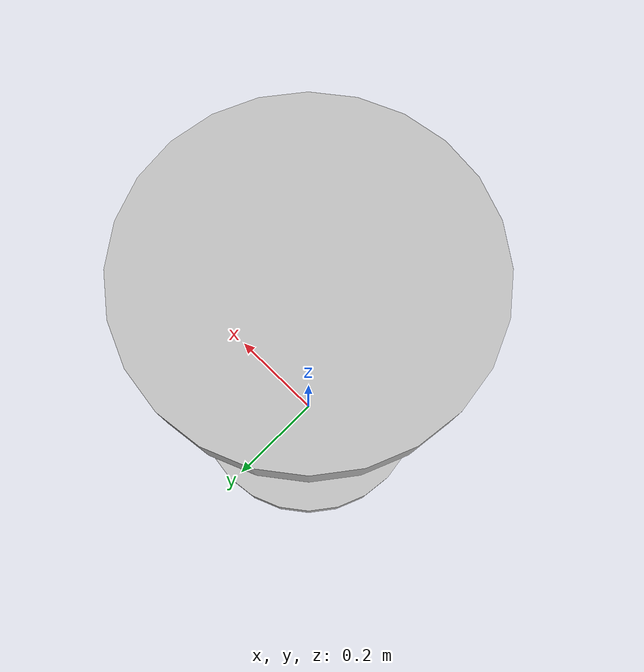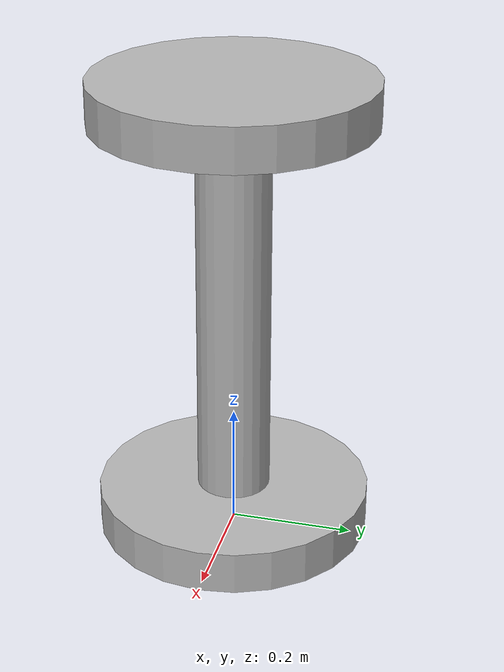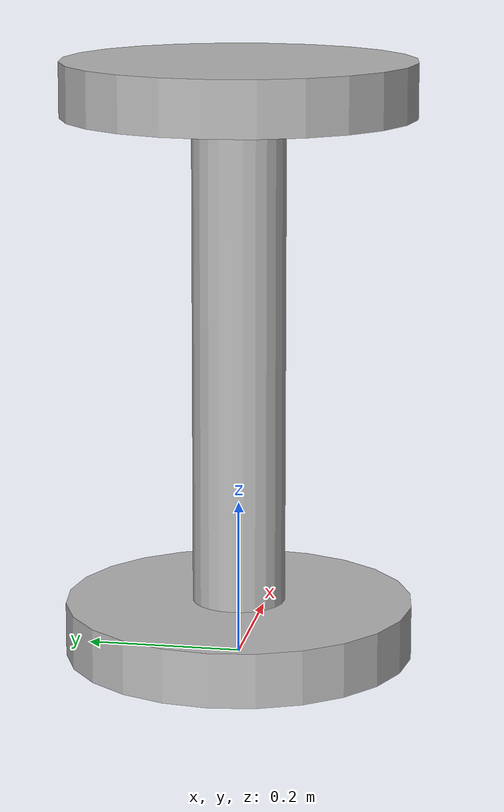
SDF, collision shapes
<?xml version="1.0" ?>
<sdf version="1.4">
  <model name="robot_3dw">
    <static>false</static>
    <link name="body">
      <pose>0 0 0.001 0 0 0</pose>
      <gravity>true</gravity>
      <inertial>
        <mass>30</mass>
        <pose>0 0 0.075 0 0 0</pose>
        <inertia>
	  <!-- according to http://en.wikipedia.org/wiki/List_of_moments_of_inertia for a solid cylinder of radius r=0.225, height h=0.15, mass m=30 -->
          <ixx>0.4359375</ixx>
          <ixy>0.0</ixy>
          <ixz>0.0</ixz>
          <iyy>0.4359375</iyy>
          <iyz>0.0</iyz>
          <izz>0.759375</izz>
        </inertia>
      </inertial>

      <visual name="body-visual">
        <pose>0.01 0 0.00 0 0 3.14159</pose>
        <geometry>
          <mesh>
            <uri>model://robotino3/meshes/robotino3.dae</uri>
            <scale>0.001 0.001 0.001</scale>
          </mesh>
        </geometry>
        <cast_shadows>false</cast_shadows>
      </visual>

      <collision name="body1-collision">
        <pose>0 0 0.735 0 0 0</pose>
        <geometry>
          <cylinder>
            <length>0.07</length>
            <radius>0.225</radius>
          </cylinder>
        </geometry>
        <surface>
          <friction>
            <ode>
              <mu>0.2</mu>
              <mu2>0.2</mu2>
              <slip1>0.8</slip1>
              <slip2>0.8</slip2>
            </ode>
          </friction>
          <contact>
            <ode>
              <min_depth>0.05</min_depth>
            </ode>
          </contact>
        </surface>
      </collision>

      <collision name="body2-collision">
        <pose>0 0 0.35 0 0 0</pose>
        <geometry>
          <cylinder>
            <length>0.68</length>
            <radius>0.06</radius>
          </cylinder>
        </geometry>
        <surface>
          <friction>
            <ode>
              <mu>0.2</mu>
              <mu2>0.2</mu2>
              <slip1>0.8</slip1>
              <slip2>0.8</slip2>
            </ode>
          </friction>
          <contact>
            <ode>
              <min_depth>0.05</min_depth>
            </ode>
          </contact>
        </surface>
      </collision>

      <collision name="body3-collision">
        <pose>0 0 0.035 0 0 0</pose>
        <geometry>
          <cylinder>
            <length>0.07</length>
            <radius>0.225</radius>
          </cylinder>
        </geometry>
        <surface>
          <friction>
            <ode>
              <mu>0.2</mu>
              <mu2>0.2</mu2>
              <slip1>0.8</slip1>
              <slip2>0.8</slip2>
            </ode>
          </friction>
          <contact>
            <ode>
              <min_depth>0.05</min_depth>
            </ode>
          </contact>
        </surface>
      </collision>
      <visual name="tower">
        <pose>0.00 0.00 0.43 0 0 0</pose>
        <geometry>
          <box>
            <size>0.09 0.09 0.70</size>
          </box>
        </geometry>
      </visual>
      <visual name="tower_plate">
        <pose>0 0 0.79 0 0 0</pose>
        <geometry>
          <cylinder>
            <length>0.02</length>
            <radius>0.225</radius>
          </cylinder>
        </geometry>
      </visual>
      <sensor name="gpu_laser" type="gpu_lidar">
        <pose>0.0 -0.15 0.235 0 0 0</pose>
        <topic>/model/robot_3dw/laser</topic>
        <enable_metrics>true</enable_metrics>
        <gz_frame_id>robot_3dw/body</gz_frame_id>
        <update_rate>10</update_rate>
        <lidar>
          <scan>
            <horizontal>
              <samples>640</samples>
              <resolution>1</resolution>
              <min_angle>-2.26889</min_angle>
              <max_angle>2.268899</max_angle>
            </horizontal>
            <vertical>
              <samples>1</samples>
              <resolution>0.01</resolution>
              <min_angle>0</min_angle>
              <max_angle>0</max_angle>
            </vertical>
          </scan>
          <range>
            <min>0.08</min>
            <max>10.0</max>
            <resolution>0.01</resolution>
          </range>
          <noise>
            <type>gaussian</type>
            <mean>0.0</mean>
            <stddev>0.01</stddev>
          </noise>
        </lidar>
        <visualize>true</visualize>
      </sensor>
    </link>

    <link name="depth_camera_frame">
      <pose>0 0 1.0 0 0 0</pose>

      <sensor name="depth_camera_3dw" type="depth_camera">
        <pose>0 0 0 0 0 0</pose>
        <update_rate>10</update_rate>
        <topic>/model/robot_3dw/depth_camera</topic>
        <gz_frame_id>robot_3dw/depth_camera_frame</gz_frame_id>
        <camera>
          <horizontal_fov>1.05</horizontal_fov>
          <image>
            <width>256</width>
            <height>256</height>
            <format>R_FLOAT32</format>
          </image>
          <clip>
            <near>0.1</near>
            <far>10.0</far>
          </clip>
        </camera>
      </sensor>
      <sensor name="camera_3dw" type="camera">
        <topic>/model/robot_3dw/rgb_camera</topic>
        <gz_frame_id>robot_3dw/rgb_camera_frame</gz_frame_id>
        <camera>
          <horizontal_fov>1.047</horizontal_fov>
          <image>
            <width>320</width>
            <height>240</height>
	    <format>R8G8B8</format>
          </image>
          <clip>
            <near>0.1</near>
            <far>100</far>
          </clip>
        </camera>
        <always_on>1</always_on>
        <update_rate>5</update_rate>
        <visualize>true</visualize>
        <topic>camera</topic>
      </sensor>
    </link>
    <joint name="depth_camera_joint" type="fixed">
      <parent>body</parent>
      <child>depth_camera_frame</child>
    </joint>

    <plugin
      filename="gz-sim-velocity-control-system"
      name="gz::sim::systems::VelocityControl">
      <link_name>body</link_name>
      <topic>robot_3dw/cmd_vel</topic>
    </plugin>

    <plugin
      filename="gz-sim-odometry-publisher-system"
      name="gz::sim::systems::OdometryPublisher">
      <odom_frame>robot_3dw/odom</odom_frame>
      <odom_topic>/model/robot_3dw/odom</odom_topic>
      <robot_base_frame>robot_3dw/body</robot_base_frame>
      <tf_topic>/model/robot_3dw/tf</tf_topic>
    </plugin>

    <plugin filename="gz-sim-pose-publisher-system" name="gz::sim::systems::PosePublisher">
      <publish_link_pose>true</publish_link_pose>
      <use_pose_vector_msg>true</use_pose_vector_msg>
      <static_publisher>false</static_publisher>
      <static_update_frequency>10</static_update_frequency>
      <publish_nested_models>true</publish_nested_models>
    </plugin>
  </model>
</sdf>
